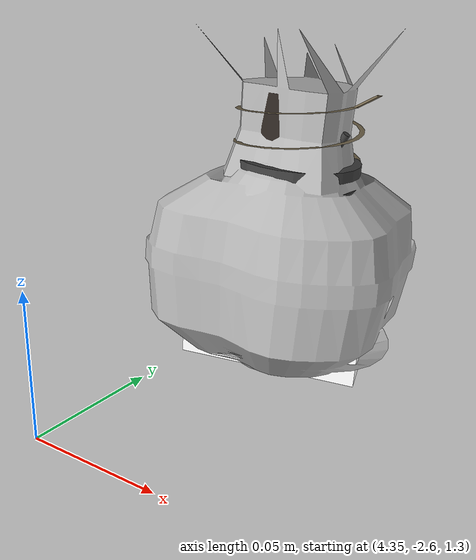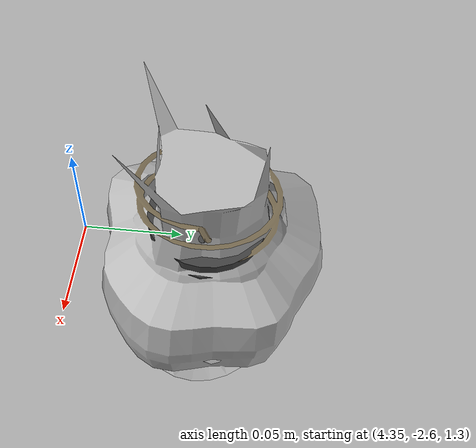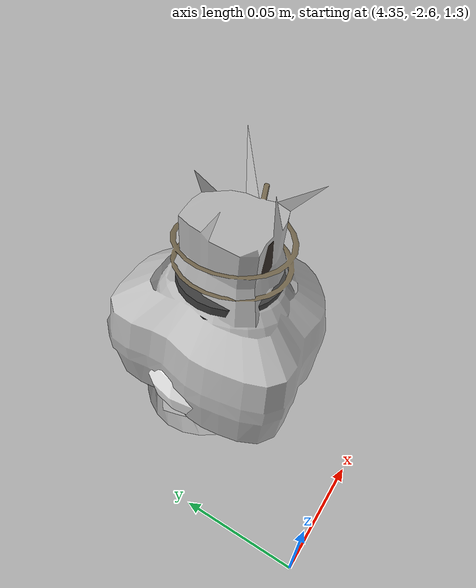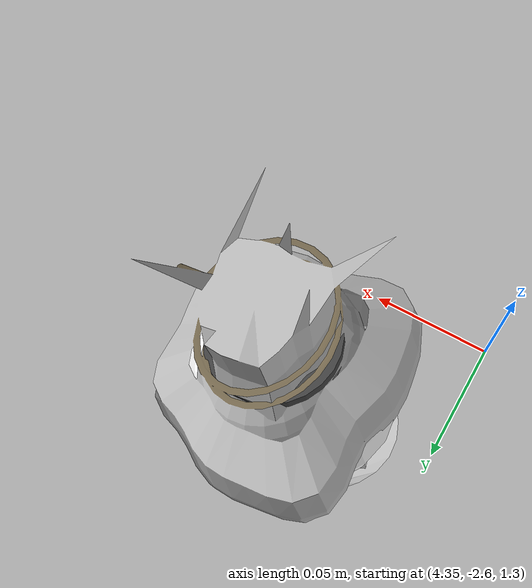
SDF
<sdf version="1.11">
 <world name="peach_orchard">
  <model name="ground">
   <static>true</static>
   <link name="link">
    <visual name="soil">
     <geometry><plane><normal>0 0 1</normal><size>32 22</size></plane></geometry>
     <material>
      <ambient>1 1 1 1</ambient>
      <diffuse>1 1 1 1</diffuse>
      <specular>0.1 0.1 0.1 1</specular>
      <pbr>
       <metal>
        <albedo_map>textures/soil_albedo.png</albedo_map>
        <normal_map type="tangent">textures/soil_normal.png</normal_map>
        <roughness>0.95</roughness>
        <metalness>0</metalness>
       </metal>
      </pbr>
     </material>
    </visual>
    <collision name="c_soil">
     <geometry><plane><normal>0 0 1</normal><size>32 22</size></plane></geometry>
    </collision>
   </link>
  </model>
  <model name="peach_tree_r3_t2_05">
   <pose>4.40052 -2.53444 1.32007 0 0.0987262 -0.0422348</pose>
   <static>true</static>
   <link name="bag">
    <visual name="bag_mesh">
     <pose>0 0 0.0453938 0 0 -0</pose>
     <geometry>
      <mesh><uri>model://peach_sim/meshes/bagged_peach.glb</uri><scale>0.99091 1.21535 1.03168</scale></mesh>
     </geometry>
    </visual>
    <visual name="body">
     <pose>0 0 0.0273938 0 0 0</pose>
     <geometry><ellipsoid><radii>0.0371591 0.031599 0.0295853</radii></ellipsoid></geometry>
     <material>
      <ambient>1 1 1 1</ambient>
      <diffuse>1 1 1 1</diffuse>
      <specular>0.1 0.1 0.1 1</specular>
      <pbr>
       <metal>
        <albedo_map>textures/paper_bag_albedo.png</albedo_map>
        <normal_map type="tangent">textures/paper_bag_normal.png</normal_map>
        <roughness>0.72</roughness>
        <metalness>0</metalness>
       </metal>
      </pbr>
     </material>
    </visual>
    <visual name="bottom_fold">
     <pose>0 0 0.012 0 0 0.35</pose>
     <geometry><box><size>0.0575966 0.0363388 0.022</size></box></geometry>
     <material>
      <ambient>1 1 1 1</ambient>
      <diffuse>1 1 1 1</diffuse>
      <specular>0.1 0.1 0.1 1</specular>
      <pbr>
       <metal>
        <albedo_map>textures/paper_bag_albedo.png</albedo_map>
        <normal_map type="tangent">textures/paper_bag_normal.png</normal_map>
        <roughness>0.8</roughness>
        <metalness>0</metalness>
       </metal>
      </pbr>
     </material>
    </visual>
    <visual name="fruit">
     <pose>0 0 0.0214997 0 0 0</pose>
     <geometry><sphere><radius>0.0285997</radius></sphere></geometry>
     <material>
      <ambient>1 1 1 1</ambient>
      <diffuse>1 1 1 1</diffuse>
      <specular>0.1 0.1 0.1 1</specular>
      <pbr>
       <metal>
        <albedo_map>textures/fruit_skin_albedo.png</albedo_map>
        <normal_map type="tangent">textures/fruit_skin_normal.png</normal_map>
        <roughness>0.55</roughness>
        <metalness>0</metalness>
       </metal>
      </pbr>
     </material>
    </visual>
    <visual name="neck">
     <pose>0 0 0.0637876 0 0 0</pose>
     <geometry><cylinder><radius>0.013</radius><length>0.018</length></cylinder></geometry>
     <material>
      <ambient>1 1 1 1</ambient>
      <diffuse>1 1 1 1</diffuse>
      <specular>0.1 0.1 0.1 1</specular>
      <pbr>
       <metal>
        <albedo_map>textures/paper_bag_albedo.png</albedo_map>
        <normal_map type="tangent">textures/paper_bag_normal.png</normal_map>
        <roughness>0.75</roughness>
        <metalness>0</metalness>
       </metal>
      </pbr>
     </material>
    </visual>
    <visual name="gather">
     <pose>0 0 0.0447876 0 0 0</pose>
     <geometry><cylinder><radius>0.019</radius><length>0.02</length></cylinder></geometry>
     <material>
      <ambient>1 1 1 1</ambient>
      <diffuse>1 1 1 1</diffuse>
      <specular>0.1 0.1 0.1 1</specular>
      <pbr>
       <metal>
        <albedo_map>textures/paper_bag_albedo.png</albedo_map>
        <normal_map type="tangent">textures/paper_bag_normal.png</normal_map>
        <roughness>0.8</roughness>
        <metalness>0</metalness>
       </metal>
      </pbr>
     </material>
    </visual>
    <visual name="inner_paper">
     <pose>0 0 0.0687876 0 0 0</pose>
     <geometry><cylinder><radius>0.01</radius><length>0.008</length></cylinder></geometry>
     <material>
      <ambient>0.180392 0.14902 0.133333 1</ambient>
      <diffuse>0.180392 0.14902 0.133333 1</diffuse>
      <specular>0.1 0.1 0.1 1</specular>
     </material>
    </visual>
    <visual name="wire_0">
     <pose>0 0 0.0587876 0 0 0</pose>
     <geometry><cylinder><radius>0.0205</radius><length>0.0035</length></cylinder></geometry>
     <material>
      <ambient>0.25 0.25 0.25 1</ambient>
      <diffuse>0.25 0.25 0.25 1</diffuse>
      <specular>0.1 0.1 0.1 1</specular>
     </material>
    </visual>
    <visual name="wire_1">
     <pose>0 0 0.0657876 0 0 0</pose>
     <geometry><cylinder><radius>0.0205</radius><length>0.0035</length></cylinder></geometry>
     <material>
      <ambient>0.25 0.25 0.25 1</ambient>
      <diffuse>0.25 0.25 0.25 1</diffuse>
      <specular>0.1 0.1 0.1 1</specular>
     </material>
    </visual>
    <visual name="wire_tail">
     <pose>0.01 0 0.0667876 0 0.521618 0</pose>
     <geometry><cylinder><radius>0.0012</radius><length>0.026</length></cylinder></geometry>
     <material>
      <ambient>0.25 0.25 0.25 1</ambient>
      <diffuse>0.25 0.25 0.25 1</diffuse>
      <specular>0.1 0.1 0.1 1</specular>
     </material>
    </visual>
    <collision name="c_body">
     <pose>0 0 0.0273938 0 0 0</pose>
     <geometry><cylinder><radius>0.0371591</radius><length>0.0547876</length></cylinder></geometry>
    </collision>
   </link>
  </model>
 </world>
</sdf>
